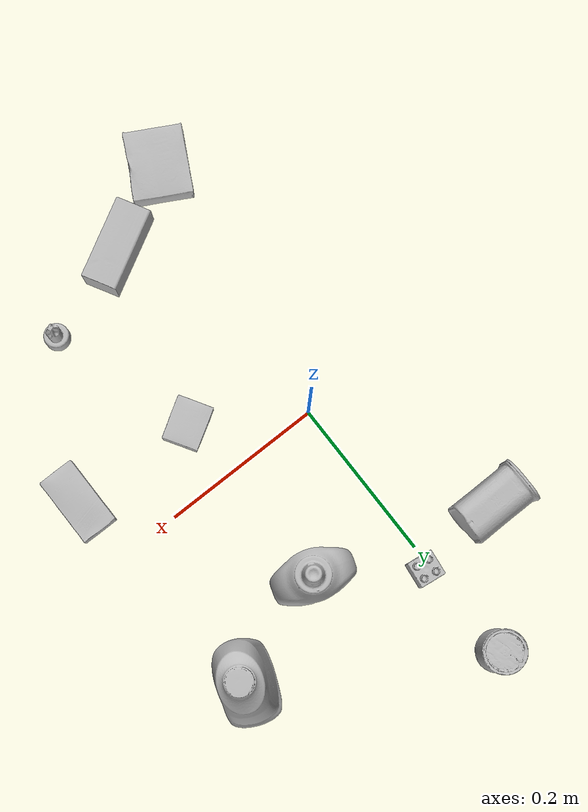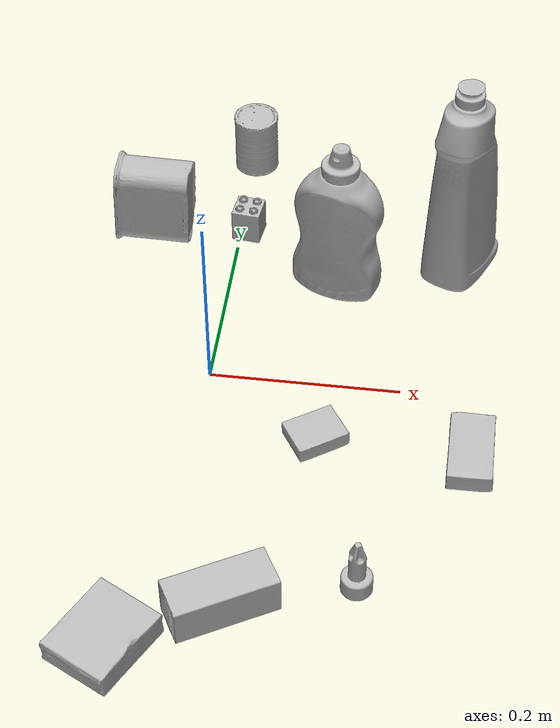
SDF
<sdf version="1.4">
  <world name="default">
    <light name="light1" type="point">
      <pose>0 0 1 0 0 0</pose>
      <diffuse>3 3 3 1</diffuse>
      <specular>3 3 3 1</specular>
    </light>
    <light name="light2" type="point">
      <pose>0 0.5 2 0 0 0</pose>
      <diffuse>1 1 1 1</diffuse>
      <specular>1 1 1 1</specular>
    </light>
    <light name="light3" type="point">
      <pose>0 0.5 2 0 0 0</pose>
      <diffuse>3 3 3 1</diffuse>
      <specular>3 3 3 1</specular>
    </light>
    <scene>
      <ambient>0.7 0.7 0.7</ambient>
    </scene>
    <model name="bottle1">
      <link name="link_bottle1">
        <collision name="default">
          <geometry>
            <mesh>
              <uri>model://bleach_cleanser/collision_meshes/collision.obj</uri>
              <scale>1.0 1.0 1.0</scale>
            </mesh>
          </geometry>
          <surface>
            <friction>
              <ode>
                <mu>0.5</mu>
                <mu2>0.5</mu2>
              </ode>
            </friction>
          <contact>
        <ode>
            <max_vel>0</max_vel>
            <min_depth>0.0001</min_depth>
            <kp>1e8</kp>
        </ode>
    </contact></surface>
        </collision>
        <visual name="default">
          <geometry>
            <mesh>
              <uri>model://bleach_cleanser/visual_meshes/visual.dae</uri>
              <scale>1.0 1.0 1.0</scale>
            </mesh>
          </geometry>
        </visual>
        <inertial>
          <mass>1.578364610671997</mass>
          <pose>0.00012193182919872925 0.003783882362768054 -0.024421613663434982 -0.07381669869228723 0.000420116582496686 -0.006875050642452563</pose>
          <inertia>
            <ixx>0.00768213</ixx>
            <iyy>0.0071586203</iyy>
            <izz>0.0013134446</izz>
            <ixy>0</ixy>
            <ixz>0</ixz>
            <iyz>0</iyz>
          </inertia>
        </inertial>
      </link>
      <pose>0.24878937005996704 0.20187807083129883 0.12578415870666504 -0.00020040528743359108 1.6622466389558143e-05 2.7530561873955404</pose>
    </model>
    <model name="bottle2">
      <link name="link_bottle2">
        <collision name="default">
          <geometry>
            <mesh>
              <uri>model://mustard_bottle/collision_meshes/collision.obj</uri>
              <scale>1.0 1.0 1.0</scale>
            </mesh>
          </geometry>
          <surface>
            <friction>
              <ode>
                <mu>0.5</mu>
                <mu2>0.5</mu2>
              </ode>
            </friction>
          <contact>
        <ode>
            <max_vel>0</max_vel>
            <min_depth>0.0001</min_depth>
            <kp>1e8</kp>
        </ode>
    </contact></surface>
        </collision>
        <visual name="default">
          <geometry>
            <mesh>
              <uri>model://mustard_bottle/visual_meshes/visual.dae</uri>
              <scale>1.0 1.0 1.0</scale>
            </mesh>
          </geometry>
        </visual>
        <inertial>
          <mass>0.5896905064582825</mass>
          <pose>0.000503245391882956 -0.00015647403779439628 -0.0174757931381464 0.00041823284967905286 0.0009465779461724547 0.024853724225743102</pose>
          <inertia>
            <ixx>0.00163749</ixx>
            <iyy>0.0014367587</iyy>
            <izz>0.00043156123</izz>
            <ixy>0</ixy>
            <ixz>0</ixz>
            <iyz>0</iyz>
          </inertia>
        </inertial>
      </link>
      <pose>0.11792124807834625 0.15523169934749603 0.09583086520433426 -0.012050533770937044 -0.0048898777628432226 -1.8885274357818707</pose>
    </model>
    <model name="toy1">
      <link name="link_toy1">
        <collision name="default">
          <geometry>
            <mesh>
              <uri>model://b_lego_duplo/collision_meshes/collision.obj</uri>
              <scale>1.0 1.0 1.0</scale>
            </mesh>
          </geometry>
          <surface>
            <friction>
              <ode>
                <mu>0.5</mu>
                <mu2>0.5</mu2>
              </ode>
            </friction>
          <contact>
        <ode>
            <max_vel>0</max_vel>
            <min_depth>0.0001</min_depth>
            <kp>1e8</kp>
        </ode>
    </contact></surface>
        </collision>
        <visual name="default">
          <geometry>
            <mesh>
              <uri>model://b_lego_duplo/visual_meshes/visual.dae</uri>
              <scale>1.0 1.0 1.0</scale>
            </mesh>
          </geometry>
        </visual>
        <inertial>
          <mass>0.04927889630198479</mass>
          <pose>-0.00011053016351070255 -9.152428901870735e-06 0.0019294293597340584 -0.03749545918935276 -0.026353596882306905 0.4519115393215097</pose>
          <inertia>
            <ixx>1.0085294e-05</ixx>
            <iyy>1.015309e-05</iyy>
            <izz>8.985672e-06</izz>
            <ixy>0</ixy>
            <ixz>0</ixz>
            <iyz>0</iyz>
          </inertia>
        </inertial>
      </link>
      <pose>0.00874421838670969 0.22701872885227203 0.021814998239278793 -8.048937242566495e-07 -7.129964183436096e-07 -0.11971980790043453</pose>
    </model>
    <model name="toy2">
      <link name="link_toy2">
        <collision name="default">
          <geometry>
            <mesh>
              <uri>model://d_toy_airplane/collision_meshes/collision.obj</uri>
              <scale>1.0 1.0 1.0</scale>
            </mesh>
          </geometry>
          <surface>
            <friction>
              <ode>
                <mu>0.5</mu>
                <mu2>0.5</mu2>
              </ode>
            </friction>
          <contact>
        <ode>
            <max_vel>0</max_vel>
            <min_depth>0.0001</min_depth>
            <kp>1e8</kp>
        </ode>
    </contact></surface>
        </collision>
        <visual name="default">
          <geometry>
            <mesh>
              <uri>model://d_toy_airplane/visual_meshes/visual.dae</uri>
              <scale>1.0 1.0 1.0</scale>
            </mesh>
          </geometry>
        </visual>
        <inertial>
          <mass>0.023543989285826683</mass>
          <pose>9.41029647947289e-05 -5.8093268307857215e-05 -0.011728093028068542 0.0002670074791080515 0.004678977428991067 0.5194709842729006</pose>
          <inertia>
            <ixx>7.058034e-06</ixx>
            <iyy>7.063356e-06</iyy>
            <izz>2.1308651e-06</izz>
            <ixy>0</ixy>
            <ixz>0</ixz>
            <iyz>0</iyz>
          </inertia>
        </inertial>
      </link>
      <pose>0.17918682098388672 -0.2530234158039093 0.03333831578493118 0.0002885933392830445 -1.8028820728643383e-05 2.025424194610787</pose>
    </model>
    <model name="can1">
      <link name="link_can1">
        <collision name="default">
          <geometry>
            <mesh>
              <uri>model://master_chef_can/collision_meshes/collision.obj</uri>
              <scale>0.5 0.5 0.5</scale>
            </mesh>
          </geometry>
          <surface>
            <friction>
              <ode>
                <mu>0.5</mu>
                <mu2>0.5</mu2>
              </ode>
            </friction>
          <contact>
        <ode>
            <max_vel>0</max_vel>
            <min_depth>0.0001</min_depth>
            <kp>1e8</kp>
        </ode>
    </contact></surface>
        </collision>
        <visual name="default">
          <geometry>
            <mesh>
              <uri>model://master_chef_can/visual_meshes/visual.dae</uri>
              <scale>0.5 0.5 0.5</scale>
            </mesh>
          </geometry>
        </visual>
        <inertial>
          <mass>0.13489052653312683</mass>
          <pose>-4.6619643399026245e-05 1.392684936263322e-07 -5.080000119050965e-05 -0.0017995055981966167 0.0006479432683086387 -0.6102521024359563</pose>
          <inertia>
            <ixx>7.9171594e-05</ixx>
            <iyy>7.85889e-05</iyy>
            <izz>4.3748354e-05</izz>
            <ixy>0</ixy>
            <ixz>0</ixz>
            <iyz>0</iyz>
          </inertia>
        </inertial>
      </link>
      <pose>0.00021702933008782566 0.35181233286857605 0.035301998257637024 -1.310561790936797e-06 -1.0941763475859307e-06 2.322370126304216</pose>
    </model>
    <model name="can2">
      <link name="link_can2">
        <collision name="default">
          <geometry>
            <mesh>
              <uri>model://potted_meat_can/collision_meshes/collision.obj</uri>
              <scale>1.0 1.0 1.0</scale>
            </mesh>
          </geometry>
          <surface>
            <friction>
              <ode>
                <mu>0.5</mu>
                <mu2>0.5</mu2>
              </ode>
            </friction>
          <contact>
        <ode>
            <max_vel>0</max_vel>
            <min_depth>0.0001</min_depth>
            <kp>1e8</kp>
        </ode>
    </contact></surface>
        </collision>
        <visual name="default">
          <geometry>
            <mesh>
              <uri>model://potted_meat_can/visual_meshes/visual.dae</uri>
              <scale>1.0 1.0 1.0</scale>
            </mesh>
          </geometry>
        </visual>
        <inertial>
          <mass>0.4512253701686859</mass>
          <pose>0.00022888150124344975 -5.9891150158364326e-05 -0.0006367433816194534 -0.028093371406289817 -0.007232609295346345 0.015406271951796056</pose>
          <inertia>
            <ixx>0.00058045425</ixx>
            <iyy>0.00035267006</iyy>
            <izz>0.00042216998</izz>
            <ixy>0</ixy>
            <ixz>0</ixz>
            <iyz>0</iyz>
          </inertia>
        </inertial>
      </link>
      <pose>-0.09547682106494904 0.21490176022052765 0.04969043284654617 -1.5345719731650416 -0.0009485736772100407 1.5786838837160615</pose>
    </model>
    <model name="box1">
      <link name="link_box1">
        <collision name="default">
          <geometry>
            <mesh>
              <uri>model://pudding_box/collision_meshes/collision.obj</uri>
              <scale>0.5 0.5 0.5</scale>
            </mesh>
          </geometry>
          <surface>
            <friction>
              <ode>
                <mu>0.5</mu>
                <mu2>0.5</mu2>
              </ode>
            </friction>
          <contact>
        <ode>
            <max_vel>0</max_vel>
            <min_depth>0.0001</min_depth>
            <kp>1e8</kp>
        </ode>
    </contact></surface>
        </collision>
        <visual name="default">
          <geometry>
            <mesh>
              <uri>model://pudding_box/visual_meshes/visual.dae</uri>
              <scale>0.5 0.5 0.5</scale>
            </mesh>
          </geometry>
        </visual>
        <inertial>
          <mass>0.02510015107691288</mass>
          <pose>0.00024474109522998333 0.0004033942532259971 -0.0002594413817860186 0.005213101332996491 -0.0066037987089797995 0.020079823298230236</pose>
          <inertia>
            <ixx>7.093607e-06</ixx>
            <iyy>4.7726294e-06</iyy>
            <izz>1.04755645e-05</izz>
            <ixy>0</ixy>
            <ixz>0</ixz>
            <iyz>0</iyz>
          </inertia>
        </inertial>
      </link>
      <pose>0.12013987451791763 -0.07619486004114151 0.00986290443688631 0.022348447130807598 -0.011391779326968025 -1.020494246802773</pose>
    </model>
    <model name="box2">
      <link name="link_box2">
        <collision name="default">
          <geometry>
            <mesh>
              <uri>model://gelatin_box/collision_meshes/collision.obj</uri>
              <scale>1.0 1.0 1.0</scale>
            </mesh>
          </geometry>
          <surface>
            <friction>
              <ode>
                <mu>0.5</mu>
                <mu2>0.5</mu2>
              </ode>
            </friction>
          <contact>
        <ode>
            <max_vel>0</max_vel>
            <min_depth>0.0001</min_depth>
            <kp>1e8</kp>
        </ode>
    </contact></surface>
        </collision>
        <visual name="default">
          <geometry>
            <mesh>
              <uri>model://gelatin_box/visual_meshes/visual.dae</uri>
              <scale>1.0 1.0 1.0</scale>
            </mesh>
          </geometry>
        </visual>
        <inertial>
          <mass>0.2452477514743805</mass>
          <pose>0.000431961816502735 0.00011156871187267825 -0.0003640321083366871 -0.0010503720803081407 -0.004755818225601415 0.01644055574590794</pose>
          <inertia>
            <ixx>0.0001731249</ixx>
            <iyy>0.0001236622</iyy>
            <izz>0.00026353472</izz>
            <ixy>0</ixy>
            <ixz>0</ixz>
            <iyz>0</iyz>
          </inertia>
        </inertial>
      </link>
      <pose>-0.041576795279979706 -0.34423118829727173 0.01516831573098898 0.0055974000567725725 -0.007304447506472684 -0.4975149250241955</pose>
    </model>
    <model name="box3">
      <link name="link_box3">
        <collision name="default">
          <geometry>
            <mesh>
              <uri>model://sugar_box/collision_meshes/collision.obj</uri>
              <scale>0.5 0.5 0.5</scale>
            </mesh>
          </geometry>
          <surface>
            <friction>
              <ode>
                <mu>0.5</mu>
                <mu2>0.5</mu2>
              </ode>
            </friction>
          <contact>
        <ode>
            <max_vel>0</max_vel>
            <min_depth>0.0001</min_depth>
            <kp>1e8</kp>
        </ode>
    </contact></surface>
        </collision>
        <visual name="default">
          <geometry>
            <mesh>
              <uri>model://sugar_box/visual_meshes/visual.dae</uri>
              <scale>0.5 0.5 0.5</scale>
            </mesh>
          </geometry>
        </visual>
        <inertial>
          <mass>0.12277840822935104</mass>
          <pose>0.0005171863595023751 1.9245549992774613e-05 -0.00018182402709499002 -0.0004046257474220826 0.0010506635214397083 0.0026153787892127145</pose>
          <inertia>
            <ixx>2.5574656e-05</ixx>
            <iyy>8.2662555e-05</iyy>
            <izz>9.895694e-05</izz>
            <ixy>0</ixy>
            <ixz>0</ixz>
            <iyz>0</iyz>
          </inertia>
        </inertial>
      </link>
      <pose>0.27681365609169006 -0.08183196187019348 0.011399305425584316 0.0007751335330658972 -0.02343243672310682 -1.5766680678290155</pose>
    </model>
    <model name="box4">
      <link name="link_box4">
        <collision name="default">
          <geometry>
            <mesh>
              <uri>model://wood_block/collision_meshes/collision.obj</uri>
              <scale>0.5 0.5 0.5</scale>
            </mesh>
          </geometry>
          <surface>
            <friction>
              <ode>
                <mu>0.5</mu>
                <mu2>0.5</mu2>
              </ode>
            </friction>
          <contact>
        <ode>
            <max_vel>0</max_vel>
            <min_depth>0.0001</min_depth>
            <kp>1e8</kp>
        </ode>
    </contact></surface>
        </collision>
        <visual name="default">
          <geometry>
            <mesh>
              <uri>model://wood_block/visual_meshes/visual.dae</uri>
              <scale>0.5 0.5 0.5</scale>
            </mesh>
          </geometry>
        </visual>
        <inertial>
          <mass>0.2967980206012726</mass>
          <pose>-2.9066577553749084e-06 -0.00028540470520965755 0.00013204291462898254 -0.05220902064674581 -0.005192696668457315 -0.006861378272965977</pose>
          <inertia>
            <ixx>9.929016e-05</ixx>
            <iyy>0.00031365763</iyy>
            <izz>0.00031248436</izz>
            <ixy>0</ixy>
            <ixz>0</ixz>
            <iyz>0</iyz>
          </inertia>
        </inertial>
      </link>
      <pose>0.05762211233377457 -0.29207557439804077 0.022629264742136 -0.005208493016387636 0.005718685337436345 -2.634619787540412</pose>
    </model>
  <physics type="ode">
      <max_contacts>50</max_contacts>
      <ode>
        <solver>
          <type>quick</type>
          <iters>75</iters>
        </solver>
        <constraints>
          <contact_max_correcting_vel>0</contact_max_correcting_vel>
          <contact_surface_layer>0</contact_surface_layer>
        </constraints>
      </ode>
    </physics></world>
</sdf>
